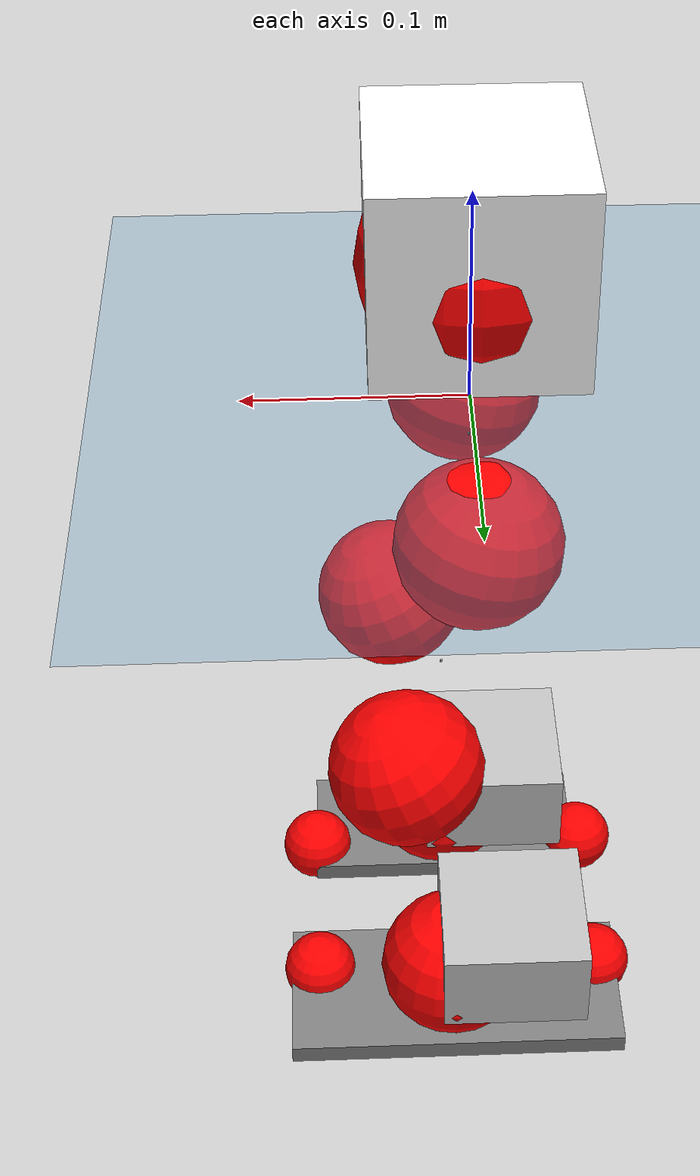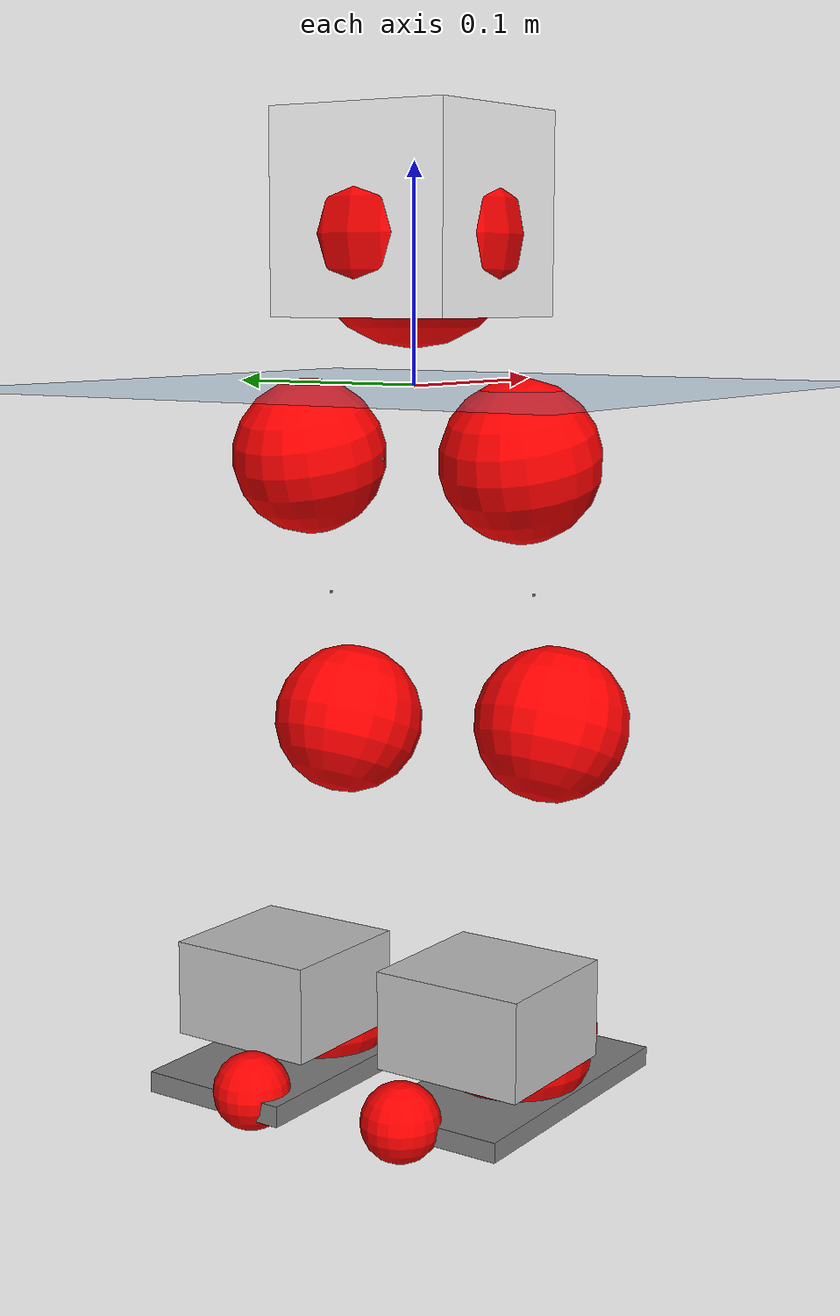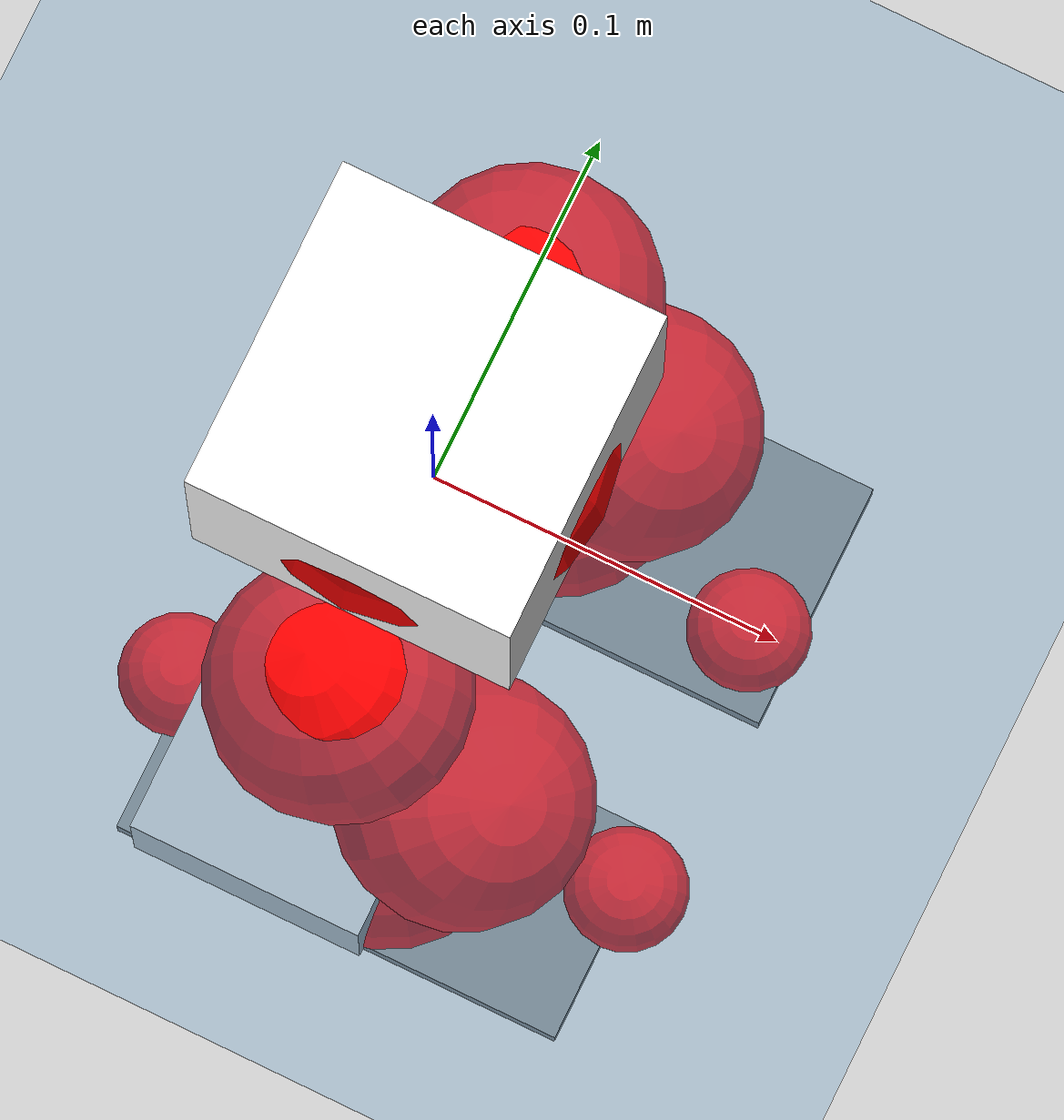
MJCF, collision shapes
<mujoco model="pi_12dof_release_v1">
  <compiler angle="radian" assetdir="assets" balanceinertia="true" inertiafromgeom="false"/>

  <option timestep="0.005" density="1.2" viscosity="2e-05"/>

  <size nkey="1"/>

  <visual>
    <quality shadowsize="8192"/>
    <map shadowclip="0.5"/>
  </visual>

  <default>
    <default class="/">
      <joint armature="0.01" damping="0.01" frictionloss="0.01"/>
      <geom contype="0" conaffinity="0" group="1" solref="-1000 -80"/>
      <site size="0.01 0.005 0.005" group="5"/>
      <general forcelimited="true" biastype="affine" gainprm="20" biasprm="0 -20 -0.5"/>
      <default class="foot">
        <geom size="0.0845 0.036 0.005" type="box" condim="6" group="4" priority="1" friction="0.9 0.2 0.2" solimp="0.015 1 0.005"/>
      </default>
      <default class="reward_collision_sphere">
        <geom group="5" rgba="1 0 0 1"/>
      </default>
    </default>
  </default>

  <asset>
    <texture type="skybox" colorspace="auto" name="//unnamed_texture_0" builtin="gradient" rgb1="0.95 0.95 0.95" rgb2="0.95 0.95 0.95" width="100" height="600"/>
    <texture type="2d" colorspace="auto" name="texplane" builtin="checker" rgb1="0.345 0.575 0.748" rgb2="0.345 0.575 0.748" markrgb="1 1 1" width="512" height="512"/>
    <material name="MatPlane" class="/" texture="texplane" texuniform="true" texrepeat="2 2" specular="0.9"/>
    <mesh name="baselink_1" class="/" file="baselink_1.STL"/>
    <mesh name="r_hip_pitch_link" class="/" file="r_hip_pitch_link.STL"/>
    <mesh name="r_hip_roll_link" class="/" file="r_hip_roll_link.STL"/>
    <mesh name="r_thigh_link" class="/" file="r_thigh_link.STL"/>
    <mesh name="r_calf_link" class="/" file="r_calf_link.STL"/>
    <mesh name="r_ankle_pitch_link" class="/" file="r_ankle_pitch_link.STL"/>
    <mesh name="r_ankle_roll_link" class="/" file="r_ankle_roll_link.STL"/>
    <mesh name="l_hip_pitch_link" class="/" file="l_hip_pitch_link.STL"/>
    <mesh name="l_hip_roll_link" class="/" file="l_hip_roll_link.STL"/>
    <mesh name="l_thigh_link" class="/" file="l_thigh_link.STL"/>
    <mesh name="l_calf_link" class="/" file="l_calf_link.STL"/>
    <mesh name="l_ankle_pitch_link" class="/" file="l_ankle_pitch_link.STL"/>
    <mesh name="l_ankle_roll_link" class="/" file="l_ankle_roll_link.STL"/>
  </asset>

  <worldbody>
    <geom name="floor" class="/" size="100 100 0.125" type="plane" group="0" material="MatPlane"/>
    <light name="toplight_shadow" class="/" pos="0 0 5" dir="0.0990148 0.0990148 -0.990148" type="directional" ambient="0.04 0.04 0.04" diffuse="0.55 0.55 0.55" specular="0.12 0.12 0.12"/>
    <light name="toplight_fill" class="/" pos="0 0 5" dir="0.0990148 0.0990148 -0.990148" type="directional" castshadow="false" ambient="0.04 0.04 0.04" diffuse="0.3 0.3 0.3" specular="0.08 0.08 0.08"/>
    <body name="trunk" pos="-0.00153118 -0.000354061 -0.000120461" quat="1 0.000501489 3.93383e-05 -5.27759e-05">
      <inertial pos="0.00216073 -0.000633138 0.0394357" quat="0.688926 0.00516538 0.00621658 0.724787" mass="1.67178" diaginertia="0.0131055 0.00198887 0.00357099"/>
      <joint name="//unnamed_joint_0" type="free"/>
      <geom name="//unnamed_geom_1" class="/" type="mesh" density="0" rgba="1 1 1 1" mesh="baselink_1"/>
      <geom name="//unnamed_geom_2" class="/" size="0.0460265 0.0460265 0.0460265" pos="0 0 0.0772966" type="box" rgba="1 1 1 1"/>
      <geom name="//unnamed_geom_3" class="reward_collision_sphere" size="0.0506291" pos="0 0 0.0676346"/>
      <site name="imu" class="/" pos="0.0023412 -0.0131262 0.00402548" size="0.0092053"/>
      <camera name="track" class="/" pos="0 -1.47844 0" quat="0.707107 0.707107 0 0" mode="trackcom"/>
      <camera name="ego_camera" class="/" pos="0.0792122 0 0.173917" quat="-0.5 -0.5 0.5 0.5"/>
      <body name="r_hip_pitch_link" pos="0.000614206 -0.0161778 -0.0321149" quat="0.992138 0.00120644 -0.125143 2.16577e-05">
        <inertial pos="0.000713094 -0.0418134 0.000611732" quat="-0.0177555 0.710303 -0.0228976 0.703299" mass="0.297878" diaginertia="0.000147454 2.22794e-05 7.23735e-05"/>
        <joint name="r_hip_pitch_joint" class="/" pos="0 0 0" axis="0.00526025 -0.999977 0.0042537" range="-1.74279 1.25579" armature="0.00905136" damping="0.00622094" frictionloss="0.00872107"/>
        <geom name="//unnamed_geom_4" class="/" type="mesh" density="0" rgba="0.75294 0.75294 0.75294 1" mesh="r_hip_pitch_link"/>
        <geom name="//unnamed_geom_5" class="/" size="0.000460265 0.000460265 0.000460265" type="box" rgba="0.75294 0.75294 0.75294 1"/>
        <body name="r_hip_roll_link" pos="0.000475155 -0.0407917 0.000373549" quat="1 2.72143e-05 1.88656e-05 -2.98353e-06">
          <inertial pos="-0.00113573 -0.00277869 -0.0618017" quat="0.706305 -0.0739343 -0.0821552 0.699227" mass="0.307758" diaginertia="0.000438695 6.15062e-05 0.00010781"/>
          <joint name="r_hip_roll_joint" class="/" pos="0 0 0" axis="-0.999968 0.000120043 0.00799884" range="-0.12149 0.548277" armature="0.00874602" damping="0.0124915" frictionloss="0.00964279"/>
          <geom name="//unnamed_geom_6" class="/" type="mesh" density="0" rgba="0.75294 0.75294 0.75294 1" mesh="r_hip_roll_link"/>
          <geom name="//unnamed_geom_7" class="/" size="0.000460265 0.000460265 0.000460265" type="box" rgba="0.75294 0.75294 0.75294 1"/>
          <geom name="//unnamed_geom_8" class="reward_collision_sphere" size="0.0368212"/>
          <body name="r_thigh_link" pos="0.00231201 0.00310262 -0.0650399" quat="1 -0.000359134 8.67748e-05 -0.000204536">
            <inertial pos="0.00125223 8.88246e-05 -0.0446935" quat="0.737631 0.675204 -0.000105887 -0.00041502" mass="0.0908166" diaginertia="0.000167256 2.11803e-05 4.89384e-05"/>
            <joint name="r_thigh_joint" class="/" pos="0 0 0" axis="0.00412809 0.00692394 -0.999968" stiffness="0.00700637" range="-0.322317 0.582107" armature="0.00883341" damping="0" frictionloss="0.00799927"/>
            <geom name="//unnamed_geom_9" class="/" type="mesh" density="0" rgba="0.75294 0.75294 0.75294 1" mesh="r_thigh_link"/>
            <geom name="//unnamed_geom_10" class="/" size="0.000460265 0.000460265 0.000460265" type="box" rgba="0.75294 0.75294 0.75294 1"/>
            <body name="r_calf_link" pos="0.000724303 -0.000485887 -0.0653763" quat="0.947645 -1.60265e-05 0.319326 3.69193e-05">
              <inertial pos="0.000758394 -0.00181912 -0.0677201" quat="0.999853 -0.00138297 0.00559235 0.0161608" mass="0.655086" diaginertia="0.004764 0.000792663 0.000150357"/>
              <joint name="r_calf_joint" class="/" pos="0 0 0" axis="-0.00589096 -0.999965 -0.00590569" range="-1.60013 0.649439" armature="0.00826178" damping="0.00816724" frictionloss="0.00910184"/>
              <geom name="//unnamed_geom_11" class="/" type="mesh" density="0" rgba="0.75294 0.75294 0.75294 1" mesh="r_calf_link"/>
              <geom name="//unnamed_geom_12" class="/" size="0.000460265 0.000460265 0.000460265" type="box" rgba="0.75294 0.75294 0.75294 1"/>
              <geom name="//unnamed_geom_13" class="reward_collision_sphere" size="0.0368212"/>
              <body name="r_ankle_pitch_link" pos="0.0010527 0.00116652 -0.136779" quat="0.980125 -0.000165439 -0.19838 -0.000344623">
                <inertial pos="0.00547264 0.00274819 -0.00283861" quat="0.00067367 0.702663 -0.0135894 0.711393" mass="0.139906" diaginertia="0.000416083 5.05446e-05 0.000104204"/>
                <joint name="r_ankle_pitch_joint" class="/" pos="0 0 0" axis="-0.00446471 -0.99999 -0.000861588" range="-1.29947 0.55375" armature="0.00921783" damping="0.00830337" frictionloss="0.0102906"/>
                <geom name="//unnamed_geom_14" class="/" type="mesh" density="0" rgba="0.75294 0.75294 0.75294 1" mesh="r_ankle_pitch_link"/>
                <geom name="//unnamed_geom_15" class="/" size="0.0359007 0.0368212 0.0230132" type="box" rgba="0.75294 0.75294 0.75294 1"/>
                <body name="r_ankle_roll_link" pos="0.0795009 0.00103605 -0.00108818" quat="1 -9.38543e-05 0.000282 -0.000212804">
                  <inertial pos="-0.0256553 0.000762037 -0.0114398" quat="0.559671 0.429952 0.433277 0.560519" mass="0.382186" diaginertia="0.00142969 0.000227505 0.000223571"/>
                  <joint name="r_ankle_roll_joint" class="/" pos="0 0 0" axis="-0.99991 -0.0106632 0.0082015" range="-0.127785 0.103764" armature="0.00800238" damping="0.0184032" frictionloss="0.00899775"/>
                  <geom name="//unnamed_geom_16" class="/" type="mesh" density="0" rgba="0.75294 0.75294 0.75294 1" mesh="r_ankle_roll_link"/>
                  <geom name="//unnamed_geom_17" class="/" type="mesh" rgba="0.75294 0.75294 0.75294 1" mesh="r_ankle_roll_link"/>
                  <geom name="right_foot" class="foot" size="0.0701011 0.0329508 0.00464256" pos="-0.0538643 0 -0.0425131"/>
                  <geom name="//unnamed_geom_19" class="reward_collision_sphere" size="0.0368212" pos="-0.0528081 0 -0.0193242"/>
                  <geom name="//unnamed_geom_20" class="reward_collision_sphere" size="0.0184106" pos="0.0158424 0.0147844 -0.0386483"/>
                  <geom name="//unnamed_geom_21" class="reward_collision_sphere" size="0.0184106" pos="-0.12674 0.0147844 -0.0386483"/>
                  <site name="right_foot" class="foot" pos="-0.0538643 0 -0.0425131" size="0.0092053"/>
                </body>
              </body>
            </body>
          </body>
        </body>
      </body>
      <body name="l_hip_pitch_link" pos="0.000818231 0.0173279 -0.0341725" quat="0.992204 -3.66056e-05 -0.124628 6.41342e-06">
        <inertial pos="0.00086018 0.0396304 -0.00263988" quat="-0.0390999 0.705751 0.0284833 0.706807" mass="0.313864" diaginertia="0.000173782 2.28589e-05 8.53324e-05"/>
        <joint name="l_hip_pitch_joint" class="/" pos="0 0 0" axis="-0.000410775 1 -5.42514e-05" range="-1.21218 1.76092" armature="0.0100643" damping="0.0111881" frictionloss="0.00941477"/>
        <geom name="//unnamed_geom_22" class="/" type="mesh" density="0" rgba="0.75294 0.75294 0.75294 1" mesh="l_hip_pitch_link"/>
        <geom name="//unnamed_geom_23" class="/" size="0.000460265 0.000460265 0.000460265" type="box" rgba="0.75294 0.75294 0.75294 1"/>
        <body name="l_hip_roll_link" pos="-7.34288e-05 0.0425279 -0.000350917" quat="1 0.000264414 -0.000359697 -6.49587e-05">
          <inertial pos="-0.00382731 -0.00125059 -0.0615616" quat="0.693905 -0.0668624 -0.0746184 0.713062" mass="0.303987" diaginertia="0.00042112 6.11744e-05 0.000104167"/>
          <joint name="l_hip_roll_joint" class="/" pos="0 0 0" axis="-0.999999 0.00110992 -0.000332934" range="-0.552387 0.155807" armature="0.00910169" damping="0" frictionloss="0.00923932"/>
          <geom name="//unnamed_geom_24" class="/" type="mesh" density="0" rgba="0.75294 0.75294 0.75294 1" mesh="l_hip_roll_link"/>
          <geom name="//unnamed_geom_25" class="/" size="0.000460265 0.000460265 0.000460265" type="box" rgba="0.75294 0.75294 0.75294 1"/>
          <geom name="//unnamed_geom_26" class="reward_collision_sphere" size="0.0368212"/>
          <body name="l_thigh_link" pos="-0.00140924 -0.000821437 -0.0688851" quat="1 1.8687e-05 -0.000185276 -5.42415e-05">
            <inertial pos="0.000830676 -0.00242935 -0.0446977" quat="0.670447 0.741917 0.0066521 -0.00397776" mass="0.0857295" diaginertia="0.000163647 2.06743e-05 4.91429e-05"/>
            <joint name="l_thigh_joint" class="/" pos="0 0 0" axis="0.000143159 0.000166935 -1" range="-0.605795 0.291918" armature="0.00904152" damping="0.00214625" frictionloss="0.00926502"/>
            <geom name="//unnamed_geom_27" class="/" type="mesh" density="0" rgba="0.75294 0.75294 0.75294 1" mesh="l_thigh_link"/>
            <geom name="//unnamed_geom_28" class="/" size="0.000460265 0.000460265 0.000460265" type="box" rgba="0.75294 0.75294 0.75294 1"/>
            <body name="l_calf_link" pos="-0.00082082 0.00133282 -0.0676831" quat="0.9477 7.66121e-05 0.319162 -0.000384326">
              <inertial pos="0.000145039 0.00445554 -0.0695454" quat="0.999984 0.00309674 -9.34573e-05 0.00476191" mass="0.611093" diaginertia="0.00450973 0.000754566 0.000141957"/>
              <joint name="l_calf_joint" class="/" pos="0 0 0" axis="0.000594927 1 1.48665e-05" stiffness="0.00257059" range="-0.596937 1.70309" armature="0.00928256" damping="0.00717888" frictionloss="0.00878686"/>
              <geom name="//unnamed_geom_29" class="/" type="mesh" density="0" rgba="0.75294 0.75294 0.75294 1" mesh="l_calf_link"/>
              <geom name="//unnamed_geom_30" class="/" size="0.000460265 0.000460265 0.000460265" type="box" rgba="0.75294 0.75294 0.75294 1"/>
              <geom name="//unnamed_geom_31" class="reward_collision_sphere" size="0.0368212"/>
              <body name="l_ankle_pitch_link" pos="-0.000717878 0.000797707 -0.132902" quat="0.980055 -9.85653e-05 -0.198724 -0.000131799">
                <inertial pos="0.00413921 0.000724227 -0.000347256" quat="-0.00259838 0.707786 0.00197719 0.706419" mass="0.129997" diaginertia="0.000392354 4.75122e-05 0.000100736"/>
                <joint name="l_ankle_pitch_joint" class="/" pos="0 0 0" axis="-0.000355343 0.999997 0.0023274" range="-0.556011 1.31192" armature="0.00833665" damping="0.0111884" frictionloss="0.00875562"/>
                <geom name="//unnamed_geom_32" class="/" type="mesh" density="0" rgba="0.75294 0.75294 0.75294 1" mesh="l_ankle_pitch_link"/>
                <geom name="//unnamed_geom_33" class="/" size="0.0359007 0.0368212 0.0230132" type="box" rgba="0.75294 0.75294 0.75294 1"/>
                <body name="l_ankle_roll_link" pos="0.0821932 0.000388265 0.000863661" quat="1 0.000349561 -0.00011573 -0.000288734">
                  <inertial pos="-0.0264261 -0.000753288 -0.0137005" quat="0.559974 0.428728 0.435245 0.559628" mass="0.38947" diaginertia="0.00148116 0.000223145 0.000236365"/>
                  <joint name="l_ankle_roll_joint" class="/" pos="0 0 0" axis="-0.999988 0.00469011 0.00164659" range="-0.170417 0.151193" armature="0.0100084" damping="0.00461997" frictionloss="0.00923305"/>
                  <geom name="//unnamed_geom_34" class="/" type="mesh" density="0" rgba="0.75294 0.75294 0.75294 1" mesh="l_ankle_roll_link"/>
                  <geom name="//unnamed_geom_35" class="/" type="mesh" rgba="0.75294 0.75294 0.75294 1" mesh="l_ankle_roll_link"/>
                  <geom name="left_foot" class="foot" size="0.0841079 0.0380598 0.00501991" pos="-0.0538643 0 -0.0425131"/>
                  <geom name="//unnamed_geom_37" class="reward_collision_sphere" size="0.0368212" pos="-0.0528081 0 -0.0193242"/>
                  <geom name="//unnamed_geom_38" class="reward_collision_sphere" size="0.0184106" pos="0.0158424 -0.0147844 -0.0386483"/>
                  <geom name="//unnamed_geom_39" class="reward_collision_sphere" size="0.0184106" pos="-0.12674 -0.0147844 -0.0386483"/>
                  <site name="left_foot" class="foot" pos="-0.0538643 0 -0.0425131" size="0.0092053"/>
                </body>
              </body>
            </body>
          </body>
        </body>
      </body>
    </body>
  </worldbody>

  <contact>
    <pair class="/" geom1="floor" geom2="right_foot" name="//unnamed_contact_1"/>
    <pair class="/" geom1="floor" geom2="left_foot" name="//unnamed_contact_0"/>
  </contact>

  <actuator>
    <general name="r_hip_pitch_joint" class="/" joint="r_hip_pitch_joint" forcerange="-19.2597 19.2597" gainprm="18.5329" biasprm="0 -18.5329 -0.469897"/>
    <general name="r_hip_roll_joint" class="/" joint="r_hip_roll_joint" forcerange="-17.5963 17.5963" gainprm="18.5329" biasprm="0 -18.5329 -0.469897"/>
    <general name="r_thigh_joint" class="/" joint="r_thigh_joint" forcerange="-19.5813 19.5813" gainprm="18.5329" biasprm="0 -18.5329 -0.469897"/>
    <general name="r_calf_joint" class="/" joint="r_calf_joint" forcerange="-19.992 19.992" gainprm="18.5329" biasprm="0 -18.5329 -0.469897"/>
    <general name="r_ankle_pitch_joint" class="/" joint="r_ankle_pitch_joint" forcerange="-18.7358 18.7358" gainprm="18.5329" biasprm="0 -18.5329 -0.469897"/>
    <general name="r_ankle_roll_joint" class="/" joint="r_ankle_roll_joint" forcerange="-19.5655 19.5655" gainprm="18.5329" biasprm="0 -18.5329 -0.469897"/>
    <general name="l_hip_pitch_joint" class="/" joint="l_hip_pitch_joint" forcerange="-18.6851 18.6851" gainprm="18.5329" biasprm="0 -18.5329 -0.469897"/>
    <general name="l_hip_roll_joint" class="/" joint="l_hip_roll_joint" forcerange="-20.9986 20.9986" gainprm="18.5329" biasprm="0 -18.5329 -0.469897"/>
    <general name="l_thigh_joint" class="/" joint="l_thigh_joint" forcerange="-17.5018 17.5018" gainprm="18.5329" biasprm="0 -18.5329 -0.469897"/>
    <general name="l_calf_joint" class="/" joint="l_calf_joint" forcerange="-19.5044 19.5044" gainprm="18.5329" biasprm="0 -18.5329 -0.469897"/>
    <general name="l_ankle_pitch_joint" class="/" joint="l_ankle_pitch_joint" forcerange="-19.8935 19.8935" gainprm="18.5329" biasprm="0 -18.5329 -0.469897"/>
    <general name="l_ankle_roll_joint" class="/" joint="l_ankle_roll_joint" forcerange="-21.2079 21.2079" gainprm="18.5329" biasprm="0 -18.5329 -0.469897"/>
  </actuator>

  <sensor>
    <gyro site="imu" name="imu_angular_velocity"/>
    <velocimeter site="imu" name="imu_linear_velocity"/>
    <framelinvel objtype="site" objname="left_foot" name="left_foot_global_linear_velocity"/>
    <framelinvel objtype="site" objname="right_foot" name="right_foot_global_linear_velocity"/>
  </sensor>

  <keyframe>
    <key name="home" qpos="0 0 0.291 1 0 0 0 0.4 0 0 -0.8 0.4 0 -0.4 0 0 0.8 -0.4 0"/>
  </keyframe>
</mujoco>
